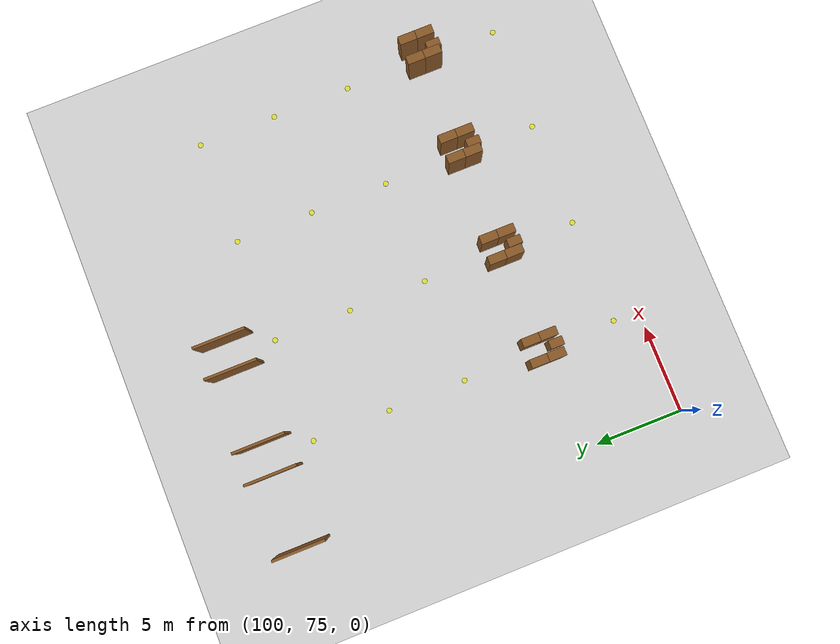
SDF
<sdf version="1.9">
 <world name="realistic_warehouse_150x200m">
  <model name="ground_plane">
   <static>true</static>
   <pose>68.5 102.0 0 0 0 0</pose>
   <link name="ground_link">
    <visual name="ground_visual">
     <geometry><box><size>127.0 194.0 0.01</size></box></geometry>
     <material><ambient>0.85 0.85 0.85 1.0</ambient><diffuse>0.85 0.85 0.85 1.0</diffuse></material>
    </visual>
    <collision name="ground_visual_collision">
     <geometry><box><size>127.0 194.0 0.01</size></box></geometry>
    </collision>
    <collision name="ground_collision">
     <geometry><plane><normal>0 0 1</normal><size>127.0 194.0</size></plane></geometry>
    </collision>
   </link>
  </model>
  <model name="aisle_R_Zone_I_A0_exit_1465">
   <static>true</static>
   <pose>100.9 97.0 1.4 0 0 0</pose>
   <link name="aisle_R_Zone_I_A0_exit_1465_link">
    <visual name="aisle_R_Zone_I_A0_exit_1465_vis">
     <geometry><box><size>0.15 3.0 2.8</size></box></geometry>
     <material><ambient>0.55 0.35 0.15 1.0</ambient><diffuse>0.55 0.35 0.15 1.0</diffuse></material>
    </visual>
    <collision name="aisle_R_Zone_I_A0_exit_1465_vis_collision">
     <geometry><box><size>0.15 3.0 2.8</size></box></geometry>
    </collision>
   </link>
  </model>
  <model name="cross_Zone_I_A1_S3_1475">
   <static>true</static>
   <pose>106.0 76.5 0.01 0 0 0</pose>
   <link name="cross_Zone_I_A1_S3_1475_link">
    <visual name="cross_Zone_I_A1_S3_1475_vis">
     <geometry><cylinder><radius>0.15</radius><length>0.02</length></cylinder></geometry>
     <material><ambient>0.9 0.9 0.2 1.0</ambient><diffuse>0.9 0.9 0.2 1.0</diffuse></material>
    </visual>
    <collision name="cross_Zone_I_A1_S3_1475_vis_collision">
     <geometry><cylinder><radius>0.15</radius><length>0.02</length></cylinder></geometry>
    </collision>
   </link>
  </model>
  <model name="rack_Zone_I_A1_S4_1476">
   <static>true</static>
   <pose>105.4 80.5 1.4 0 0 0</pose>
   <link name="rack_Zone_I_A1_S4_1476_link">
    <visual name="rack_Zone_I_A1_S4_1476_vis">
     <geometry><box><size>0.5 1.0 2.8</size></box></geometry>
     <material><ambient>0.55 0.35 0.15 1.0</ambient><diffuse>0.55 0.35 0.15 1.0</diffuse></material>
    </visual>
    <collision name="rack_Zone_I_A1_S4_1476_vis_collision">
     <geometry><box><size>0.5 1.0 2.8</size></box></geometry>
    </collision>
   </link>
  </model>
  <model name="rack_Zone_I_A1_S4_1477">
   <static>true</static>
   <pose>105.4 81.5 1.4 0 0 0</pose>
   <link name="rack_Zone_I_A1_S4_1477_link">
    <visual name="rack_Zone_I_A1_S4_1477_vis">
     <geometry><box><size>0.5 1.0 2.8</size></box></geometry>
     <material><ambient>0.55 0.35 0.15 1.0</ambient><diffuse>0.55 0.35 0.15 1.0</diffuse></material>
    </visual>
    <collision name="rack_Zone_I_A1_S4_1477_vis_collision">
     <geometry><box><size>0.5 1.0 2.8</size></box></geometry>
    </collision>
   </link>
  </model>
  <model name="rack_Zone_I_A1_S4_1478">
   <static>true</static>
   <pose>106.6 80.5 1.4 0 0 0</pose>
   <link name="rack_Zone_I_A1_S4_1478_link">
    <visual name="rack_Zone_I_A1_S4_1478_vis">
     <geometry><box><size>0.5 1.0 2.8</size></box></geometry>
     <material><ambient>0.55 0.35 0.15 1.0</ambient><diffuse>0.55 0.35 0.15 1.0</diffuse></material>
    </visual>
    <collision name="rack_Zone_I_A1_S4_1478_vis_collision">
     <geometry><box><size>0.5 1.0 2.8</size></box></geometry>
    </collision>
   </link>
  </model>
  <model name="rack_Zone_I_A1_S4_1479">
   <static>true</static>
   <pose>106.6 81.5 1.4 0 0 0</pose>
   <link name="rack_Zone_I_A1_S4_1479_link">
    <visual name="rack_Zone_I_A1_S4_1479_vis">
     <geometry><box><size>0.5 1.0 2.8</size></box></geometry>
     <material><ambient>0.55 0.35 0.15 1.0</ambient><diffuse>0.55 0.35 0.15 1.0</diffuse></material>
    </visual>
    <collision name="rack_Zone_I_A1_S4_1479_vis_collision">
     <geometry><box><size>0.5 1.0 2.8</size></box></geometry>
    </collision>
   </link>
  </model>
  <model name="rack_Zone_I_A1_S4_1480">
   <static>true</static>
   <pose>106.0 80.2 1.0499999999999998 0 0 0</pose>
   <link name="rack_Zone_I_A1_S4_1480_link">
    <visual name="rack_Zone_I_A1_S4_1480_vis">
     <geometry><box><size>0.5 0.8 2.0999999999999996</size></box></geometry>
     <material><ambient>0.55 0.35 0.15 1.0</ambient><diffuse>0.55 0.35 0.15 1.0</diffuse></material>
    </visual>
    <collision name="rack_Zone_I_A1_S4_1480_vis_collision">
     <geometry><box><size>0.5 0.8 2.0999999999999996</size></box></geometry>
    </collision>
   </link>
  </model>
  <model name="cross_Zone_I_A1_S5_1481">
   <static>true</static>
   <pose>106.0 85.5 0.01 0 0 0</pose>
   <link name="cross_Zone_I_A1_S5_1481_link">
    <visual name="cross_Zone_I_A1_S5_1481_vis">
     <geometry><cylinder><radius>0.15</radius><length>0.02</length></cylinder></geometry>
     <material><ambient>0.9 0.9 0.2 1.0</ambient><diffuse>0.9 0.9 0.2 1.0</diffuse></material>
    </visual>
    <collision name="cross_Zone_I_A1_S5_1481_vis_collision">
     <geometry><cylinder><radius>0.15</radius><length>0.02</length></cylinder></geometry>
    </collision>
   </link>
  </model>
  <model name="gap_Zone_I_A1_S6_1482">
   <static>true</static>
   <pose>106.0 90.0 0.01 0 0 0</pose>
   <link name="gap_Zone_I_A1_S6_1482_link">
    <visual name="gap_Zone_I_A1_S6_1482_vis">
     <geometry><cylinder><radius>0.15</radius><length>0.02</length></cylinder></geometry>
     <material><ambient>0.9 0.9 0.2 1.0</ambient><diffuse>0.9 0.9 0.2 1.0</diffuse></material>
    </visual>
    <collision name="gap_Zone_I_A1_S6_1482_vis_collision">
     <geometry><cylinder><radius>0.15</radius><length>0.02</length></cylinder></geometry>
    </collision>
   </link>
  </model>
  <model name="cross_Zone_I_A1_S7_1483">
   <static>true</static>
   <pose>106.0 94.5 0.01 0 0 0</pose>
   <link name="cross_Zone_I_A1_S7_1483_link">
    <visual name="cross_Zone_I_A1_S7_1483_vis">
     <geometry><cylinder><radius>0.15</radius><length>0.02</length></cylinder></geometry>
     <material><ambient>0.9 0.9 0.2 1.0</ambient><diffuse>0.9 0.9 0.2 1.0</diffuse></material>
    </visual>
    <collision name="cross_Zone_I_A1_S7_1483_vis_collision">
     <geometry><cylinder><radius>0.15</radius><length>0.02</length></cylinder></geometry>
    </collision>
   </link>
  </model>
  <model name="aisle_L_Zone_I_A1_exit_1484">
   <static>true</static>
   <pose>105.1 97.0 1.4 0 0 0</pose>
   <link name="aisle_L_Zone_I_A1_exit_1484_link">
    <visual name="aisle_L_Zone_I_A1_exit_1484_vis">
     <geometry><box><size>0.15 3.0 2.8</size></box></geometry>
     <material><ambient>0.55 0.35 0.15 1.0</ambient><diffuse>0.55 0.35 0.15 1.0</diffuse></material>
    </visual>
    <collision name="aisle_L_Zone_I_A1_exit_1484_vis_collision">
     <geometry><box><size>0.15 3.0 2.8</size></box></geometry>
    </collision>
   </link>
  </model>
  <model name="aisle_R_Zone_I_A1_exit_1485">
   <static>true</static>
   <pose>106.9 97.0 1.4 0 0 0</pose>
   <link name="aisle_R_Zone_I_A1_exit_1485_link">
    <visual name="aisle_R_Zone_I_A1_exit_1485_vis">
     <geometry><box><size>0.15 3.0 2.8</size></box></geometry>
     <material><ambient>0.55 0.35 0.15 1.0</ambient><diffuse>0.55 0.35 0.15 1.0</diffuse></material>
    </visual>
    <collision name="aisle_R_Zone_I_A1_exit_1485_vis_collision">
     <geometry><box><size>0.15 3.0 2.8</size></box></geometry>
    </collision>
   </link>
  </model>
  <model name="cross_Zone_I_A2_S3_1495">
   <static>true</static>
   <pose>112.0 76.5 0.01 0 0 0</pose>
   <link name="cross_Zone_I_A2_S3_1495_link">
    <visual name="cross_Zone_I_A2_S3_1495_vis">
     <geometry><cylinder><radius>0.15</radius><length>0.02</length></cylinder></geometry>
     <material><ambient>0.9 0.9 0.2 1.0</ambient><diffuse>0.9 0.9 0.2 1.0</diffuse></material>
    </visual>
    <collision name="cross_Zone_I_A2_S3_1495_vis_collision">
     <geometry><cylinder><radius>0.15</radius><length>0.02</length></cylinder></geometry>
    </collision>
   </link>
  </model>
  <model name="rack_Zone_I_A2_S4_1496">
   <static>true</static>
   <pose>111.4 80.5 1.4 0 0 0</pose>
   <link name="rack_Zone_I_A2_S4_1496_link">
    <visual name="rack_Zone_I_A2_S4_1496_vis">
     <geometry><box><size>0.5 1.0 2.8</size></box></geometry>
     <material><ambient>0.55 0.35 0.15 1.0</ambient><diffuse>0.55 0.35 0.15 1.0</diffuse></material>
    </visual>
    <collision name="rack_Zone_I_A2_S4_1496_vis_collision">
     <geometry><box><size>0.5 1.0 2.8</size></box></geometry>
    </collision>
   </link>
  </model>
  <model name="rack_Zone_I_A2_S4_1497">
   <static>true</static>
   <pose>111.4 81.5 1.4 0 0 0</pose>
   <link name="rack_Zone_I_A2_S4_1497_link">
    <visual name="rack_Zone_I_A2_S4_1497_vis">
     <geometry><box><size>0.5 1.0 2.8</size></box></geometry>
     <material><ambient>0.55 0.35 0.15 1.0</ambient><diffuse>0.55 0.35 0.15 1.0</diffuse></material>
    </visual>
    <collision name="rack_Zone_I_A2_S4_1497_vis_collision">
     <geometry><box><size>0.5 1.0 2.8</size></box></geometry>
    </collision>
   </link>
  </model>
  <model name="rack_Zone_I_A2_S4_1498">
   <static>true</static>
   <pose>112.6 80.5 1.4 0 0 0</pose>
   <link name="rack_Zone_I_A2_S4_1498_link">
    <visual name="rack_Zone_I_A2_S4_1498_vis">
     <geometry><box><size>0.5 1.0 2.8</size></box></geometry>
     <material><ambient>0.55 0.35 0.15 1.0</ambient><diffuse>0.55 0.35 0.15 1.0</diffuse></material>
    </visual>
    <collision name="rack_Zone_I_A2_S4_1498_vis_collision">
     <geometry><box><size>0.5 1.0 2.8</size></box></geometry>
    </collision>
   </link>
  </model>
  <model name="rack_Zone_I_A2_S4_1499">
   <static>true</static>
   <pose>112.6 81.5 1.4 0 0 0</pose>
   <link name="rack_Zone_I_A2_S4_1499_link">
    <visual name="rack_Zone_I_A2_S4_1499_vis">
     <geometry><box><size>0.5 1.0 2.8</size></box></geometry>
     <material><ambient>0.55 0.35 0.15 1.0</ambient><diffuse>0.55 0.35 0.15 1.0</diffuse></material>
    </visual>
    <collision name="rack_Zone_I_A2_S4_1499_vis_collision">
     <geometry><box><size>0.5 1.0 2.8</size></box></geometry>
    </collision>
   </link>
  </model>
  <model name="rack_Zone_I_A2_S4_1500">
   <static>true</static>
   <pose>112.0 80.2 1.0499999999999998 0 0 0</pose>
   <link name="rack_Zone_I_A2_S4_1500_link">
    <visual name="rack_Zone_I_A2_S4_1500_vis">
     <geometry><box><size>0.5 0.8 2.0999999999999996</size></box></geometry>
     <material><ambient>0.55 0.35 0.15 1.0</ambient><diffuse>0.55 0.35 0.15 1.0</diffuse></material>
    </visual>
    <collision name="rack_Zone_I_A2_S4_1500_vis_collision">
     <geometry><box><size>0.5 0.8 2.0999999999999996</size></box></geometry>
    </collision>
   </link>
  </model>
  <model name="cross_Zone_I_A2_S5_1501">
   <static>true</static>
   <pose>112.0 85.5 0.01 0 0 0</pose>
   <link name="cross_Zone_I_A2_S5_1501_link">
    <visual name="cross_Zone_I_A2_S5_1501_vis">
     <geometry><cylinder><radius>0.15</radius><length>0.02</length></cylinder></geometry>
     <material><ambient>0.9 0.9 0.2 1.0</ambient><diffuse>0.9 0.9 0.2 1.0</diffuse></material>
    </visual>
    <collision name="cross_Zone_I_A2_S5_1501_vis_collision">
     <geometry><cylinder><radius>0.15</radius><length>0.02</length></cylinder></geometry>
    </collision>
   </link>
  </model>
  <model name="gap_Zone_I_A2_S6_1502">
   <static>true</static>
   <pose>112.0 90.0 0.01 0 0 0</pose>
   <link name="gap_Zone_I_A2_S6_1502_link">
    <visual name="gap_Zone_I_A2_S6_1502_vis">
     <geometry><cylinder><radius>0.15</radius><length>0.02</length></cylinder></geometry>
     <material><ambient>0.9 0.9 0.2 1.0</ambient><diffuse>0.9 0.9 0.2 1.0</diffuse></material>
    </visual>
    <collision name="gap_Zone_I_A2_S6_1502_vis_collision">
     <geometry><cylinder><radius>0.15</radius><length>0.02</length></cylinder></geometry>
    </collision>
   </link>
  </model>
  <model name="cross_Zone_I_A2_S7_1503">
   <static>true</static>
   <pose>112.0 94.5 0.01 0 0 0</pose>
   <link name="cross_Zone_I_A2_S7_1503_link">
    <visual name="cross_Zone_I_A2_S7_1503_vis">
     <geometry><cylinder><radius>0.15</radius><length>0.02</length></cylinder></geometry>
     <material><ambient>0.9 0.9 0.2 1.0</ambient><diffuse>0.9 0.9 0.2 1.0</diffuse></material>
    </visual>
    <collision name="cross_Zone_I_A2_S7_1503_vis_collision">
     <geometry><cylinder><radius>0.15</radius><length>0.02</length></cylinder></geometry>
    </collision>
   </link>
  </model>
  <model name="aisle_L_Zone_I_A2_exit_1504">
   <static>true</static>
   <pose>111.1 97.0 1.4 0 0 0</pose>
   <link name="aisle_L_Zone_I_A2_exit_1504_link">
    <visual name="aisle_L_Zone_I_A2_exit_1504_vis">
     <geometry><box><size>0.15 3.0 2.8</size></box></geometry>
     <material><ambient>0.55 0.35 0.15 1.0</ambient><diffuse>0.55 0.35 0.15 1.0</diffuse></material>
    </visual>
    <collision name="aisle_L_Zone_I_A2_exit_1504_vis_collision">
     <geometry><box><size>0.15 3.0 2.8</size></box></geometry>
    </collision>
   </link>
  </model>
  <model name="aisle_R_Zone_I_A2_exit_1505">
   <static>true</static>
   <pose>112.9 97.0 1.4 0 0 0</pose>
   <link name="aisle_R_Zone_I_A2_exit_1505_link">
    <visual name="aisle_R_Zone_I_A2_exit_1505_vis">
     <geometry><box><size>0.15 3.0 2.8</size></box></geometry>
     <material><ambient>0.55 0.35 0.15 1.0</ambient><diffuse>0.55 0.35 0.15 1.0</diffuse></material>
    </visual>
    <collision name="aisle_R_Zone_I_A2_exit_1505_vis_collision">
     <geometry><box><size>0.15 3.0 2.8</size></box></geometry>
    </collision>
   </link>
  </model>
  <model name="cross_Zone_I_A3_S3_1515">
   <static>true</static>
   <pose>118.0 76.5 0.01 0 0 0</pose>
   <link name="cross_Zone_I_A3_S3_1515_link">
    <visual name="cross_Zone_I_A3_S3_1515_vis">
     <geometry><cylinder><radius>0.15</radius><length>0.02</length></cylinder></geometry>
     <material><ambient>0.9 0.9 0.2 1.0</ambient><diffuse>0.9 0.9 0.2 1.0</diffuse></material>
    </visual>
    <collision name="cross_Zone_I_A3_S3_1515_vis_collision">
     <geometry><cylinder><radius>0.15</radius><length>0.02</length></cylinder></geometry>
    </collision>
   </link>
  </model>
  <model name="rack_Zone_I_A3_S4_1516">
   <static>true</static>
   <pose>117.4 80.5 1.4 0 0 0</pose>
   <link name="rack_Zone_I_A3_S4_1516_link">
    <visual name="rack_Zone_I_A3_S4_1516_vis">
     <geometry><box><size>0.5 1.0 2.8</size></box></geometry>
     <material><ambient>0.55 0.35 0.15 1.0</ambient><diffuse>0.55 0.35 0.15 1.0</diffuse></material>
    </visual>
    <collision name="rack_Zone_I_A3_S4_1516_vis_collision">
     <geometry><box><size>0.5 1.0 2.8</size></box></geometry>
    </collision>
   </link>
  </model>
  <model name="rack_Zone_I_A3_S4_1517">
   <static>true</static>
   <pose>117.4 81.5 1.4 0 0 0</pose>
   <link name="rack_Zone_I_A3_S4_1517_link">
    <visual name="rack_Zone_I_A3_S4_1517_vis">
     <geometry><box><size>0.5 1.0 2.8</size></box></geometry>
     <material><ambient>0.55 0.35 0.15 1.0</ambient><diffuse>0.55 0.35 0.15 1.0</diffuse></material>
    </visual>
    <collision name="rack_Zone_I_A3_S4_1517_vis_collision">
     <geometry><box><size>0.5 1.0 2.8</size></box></geometry>
    </collision>
   </link>
  </model>
  <model name="rack_Zone_I_A3_S4_1518">
   <static>true</static>
   <pose>118.6 80.5 1.4 0 0 0</pose>
   <link name="rack_Zone_I_A3_S4_1518_link">
    <visual name="rack_Zone_I_A3_S4_1518_vis">
     <geometry><box><size>0.5 1.0 2.8</size></box></geometry>
     <material><ambient>0.55 0.35 0.15 1.0</ambient><diffuse>0.55 0.35 0.15 1.0</diffuse></material>
    </visual>
    <collision name="rack_Zone_I_A3_S4_1518_vis_collision">
     <geometry><box><size>0.5 1.0 2.8</size></box></geometry>
    </collision>
   </link>
  </model>
  <model name="rack_Zone_I_A3_S4_1519">
   <static>true</static>
   <pose>118.6 81.5 1.4 0 0 0</pose>
   <link name="rack_Zone_I_A3_S4_1519_link">
    <visual name="rack_Zone_I_A3_S4_1519_vis">
     <geometry><box><size>0.5 1.0 2.8</size></box></geometry>
     <material><ambient>0.55 0.35 0.15 1.0</ambient><diffuse>0.55 0.35 0.15 1.0</diffuse></material>
    </visual>
    <collision name="rack_Zone_I_A3_S4_1519_vis_collision">
     <geometry><box><size>0.5 1.0 2.8</size></box></geometry>
    </collision>
   </link>
  </model>
  <model name="rack_Zone_I_A3_S4_1520">
   <static>true</static>
   <pose>118.0 80.2 1.0499999999999998 0 0 0</pose>
   <link name="rack_Zone_I_A3_S4_1520_link">
    <visual name="rack_Zone_I_A3_S4_1520_vis">
     <geometry><box><size>0.5 0.8 2.0999999999999996</size></box></geometry>
     <material><ambient>0.55 0.35 0.15 1.0</ambient><diffuse>0.55 0.35 0.15 1.0</diffuse></material>
    </visual>
    <collision name="rack_Zone_I_A3_S4_1520_vis_collision">
     <geometry><box><size>0.5 0.8 2.0999999999999996</size></box></geometry>
    </collision>
   </link>
  </model>
  <model name="cross_Zone_I_A3_S5_1521">
   <static>true</static>
   <pose>118.0 85.5 0.01 0 0 0</pose>
   <link name="cross_Zone_I_A3_S5_1521_link">
    <visual name="cross_Zone_I_A3_S5_1521_vis">
     <geometry><cylinder><radius>0.15</radius><length>0.02</length></cylinder></geometry>
     <material><ambient>0.9 0.9 0.2 1.0</ambient><diffuse>0.9 0.9 0.2 1.0</diffuse></material>
    </visual>
    <collision name="cross_Zone_I_A3_S5_1521_vis_collision">
     <geometry><cylinder><radius>0.15</radius><length>0.02</length></cylinder></geometry>
    </collision>
   </link>
  </model>
  <model name="gap_Zone_I_A3_S6_1522">
   <static>true</static>
   <pose>118.0 90.0 0.01 0 0 0</pose>
   <link name="gap_Zone_I_A3_S6_1522_link">
    <visual name="gap_Zone_I_A3_S6_1522_vis">
     <geometry><cylinder><radius>0.15</radius><length>0.02</length></cylinder></geometry>
     <material><ambient>0.9 0.9 0.2 1.0</ambient><diffuse>0.9 0.9 0.2 1.0</diffuse></material>
    </visual>
    <collision name="gap_Zone_I_A3_S6_1522_vis_collision">
     <geometry><cylinder><radius>0.15</radius><length>0.02</length></cylinder></geometry>
    </collision>
   </link>
  </model>
  <model name="cross_Zone_I_A3_S7_1523">
   <static>true</static>
   <pose>118.0 94.5 0.01 0 0 0</pose>
   <link name="cross_Zone_I_A3_S7_1523_link">
    <visual name="cross_Zone_I_A3_S7_1523_vis">
     <geometry><cylinder><radius>0.15</radius><length>0.02</length></cylinder></geometry>
     <material><ambient>0.9 0.9 0.2 1.0</ambient><diffuse>0.9 0.9 0.2 1.0</diffuse></material>
    </visual>
    <collision name="cross_Zone_I_A3_S7_1523_vis_collision">
     <geometry><cylinder><radius>0.15</radius><length>0.02</length></cylinder></geometry>
    </collision>
   </link>
  </model>
  <model name="cross_Zone_I_A4_S3_1535">
   <static>true</static>
   <pose>124.0 76.5 0.01 0 0 0</pose>
   <link name="cross_Zone_I_A4_S3_1535_link">
    <visual name="cross_Zone_I_A4_S3_1535_vis">
     <geometry><cylinder><radius>0.15</radius><length>0.02</length></cylinder></geometry>
     <material><ambient>0.9 0.9 0.2 1.0</ambient><diffuse>0.9 0.9 0.2 1.0</diffuse></material>
    </visual>
    <collision name="cross_Zone_I_A4_S3_1535_vis_collision">
     <geometry><cylinder><radius>0.15</radius><length>0.02</length></cylinder></geometry>
    </collision>
   </link>
  </model>
  <model name="rack_Zone_I_A4_S4_1536">
   <static>true</static>
   <pose>123.4 80.5 1.4 0 0 0</pose>
   <link name="rack_Zone_I_A4_S4_1536_link">
    <visual name="rack_Zone_I_A4_S4_1536_vis">
     <geometry><box><size>0.5 1.0 2.8</size></box></geometry>
     <material><ambient>0.55 0.35 0.15 1.0</ambient><diffuse>0.55 0.35 0.15 1.0</diffuse></material>
    </visual>
    <collision name="rack_Zone_I_A4_S4_1536_vis_collision">
     <geometry><box><size>0.5 1.0 2.8</size></box></geometry>
    </collision>
   </link>
  </model>
  <model name="rack_Zone_I_A4_S4_1537">
   <static>true</static>
   <pose>123.4 81.5 1.4 0 0 0</pose>
   <link name="rack_Zone_I_A4_S4_1537_link">
    <visual name="rack_Zone_I_A4_S4_1537_vis">
     <geometry><box><size>0.5 1.0 2.8</size></box></geometry>
     <material><ambient>0.55 0.35 0.15 1.0</ambient><diffuse>0.55 0.35 0.15 1.0</diffuse></material>
    </visual>
    <collision name="rack_Zone_I_A4_S4_1537_vis_collision">
     <geometry><box><size>0.5 1.0 2.8</size></box></geometry>
    </collision>
   </link>
  </model>
  <model name="rack_Zone_I_A4_S4_1538">
   <static>true</static>
   <pose>124.6 80.5 1.4 0 0 0</pose>
   <link name="rack_Zone_I_A4_S4_1538_link">
    <visual name="rack_Zone_I_A4_S4_1538_vis">
     <geometry><box><size>0.5 1.0 2.8</size></box></geometry>
     <material><ambient>0.55 0.35 0.15 1.0</ambient><diffuse>0.55 0.35 0.15 1.0</diffuse></material>
    </visual>
    <collision name="rack_Zone_I_A4_S4_1538_vis_collision">
     <geometry><box><size>0.5 1.0 2.8</size></box></geometry>
    </collision>
   </link>
  </model>
  <model name="rack_Zone_I_A4_S4_1539">
   <static>true</static>
   <pose>124.6 81.5 1.4 0 0 0</pose>
   <link name="rack_Zone_I_A4_S4_1539_link">
    <visual name="rack_Zone_I_A4_S4_1539_vis">
     <geometry><box><size>0.5 1.0 2.8</size></box></geometry>
     <material><ambient>0.55 0.35 0.15 1.0</ambient><diffuse>0.55 0.35 0.15 1.0</diffuse></material>
    </visual>
    <collision name="rack_Zone_I_A4_S4_1539_vis_collision">
     <geometry><box><size>0.5 1.0 2.8</size></box></geometry>
    </collision>
   </link>
  </model>
  <model name="rack_Zone_I_A4_S4_1540">
   <static>true</static>
   <pose>124.0 80.2 1.0499999999999998 0 0 0</pose>
   <link name="rack_Zone_I_A4_S4_1540_link">
    <visual name="rack_Zone_I_A4_S4_1540_vis">
     <geometry><box><size>0.5 0.8 2.0999999999999996</size></box></geometry>
     <material><ambient>0.55 0.35 0.15 1.0</ambient><diffuse>0.55 0.35 0.15 1.0</diffuse></material>
    </visual>
    <collision name="rack_Zone_I_A4_S4_1540_vis_collision">
     <geometry><box><size>0.5 0.8 2.0999999999999996</size></box></geometry>
    </collision>
   </link>
  </model>
  <model name="cross_Zone_I_A4_S5_1541">
   <static>true</static>
   <pose>124.0 85.5 0.01 0 0 0</pose>
   <link name="cross_Zone_I_A4_S5_1541_link">
    <visual name="cross_Zone_I_A4_S5_1541_vis">
     <geometry><cylinder><radius>0.15</radius><length>0.02</length></cylinder></geometry>
     <material><ambient>0.9 0.9 0.2 1.0</ambient><diffuse>0.9 0.9 0.2 1.0</diffuse></material>
    </visual>
    <collision name="cross_Zone_I_A4_S5_1541_vis_collision">
     <geometry><cylinder><radius>0.15</radius><length>0.02</length></cylinder></geometry>
    </collision>
   </link>
  </model>
  <model name="gap_Zone_I_A4_S6_1542">
   <static>true</static>
   <pose>124.0 90.0 0.01 0 0 0</pose>
   <link name="gap_Zone_I_A4_S6_1542_link">
    <visual name="gap_Zone_I_A4_S6_1542_vis">
     <geometry><cylinder><radius>0.15</radius><length>0.02</length></cylinder></geometry>
     <material><ambient>0.9 0.9 0.2 1.0</ambient><diffuse>0.9 0.9 0.2 1.0</diffuse></material>
    </visual>
    <collision name="gap_Zone_I_A4_S6_1542_vis_collision">
     <geometry><cylinder><radius>0.15</radius><length>0.02</length></cylinder></geometry>
    </collision>
   </link>
  </model>
  <model name="cross_Zone_I_A4_S7_1543">
   <static>true</static>
   <pose>124.0 94.5 0.01 0 0 0</pose>
   <link name="cross_Zone_I_A4_S7_1543_link">
    <visual name="cross_Zone_I_A4_S7_1543_vis">
     <geometry><cylinder><radius>0.15</radius><length>0.02</length></cylinder></geometry>
     <material><ambient>0.9 0.9 0.2 1.0</ambient><diffuse>0.9 0.9 0.2 1.0</diffuse></material>
    </visual>
    <collision name="cross_Zone_I_A4_S7_1543_vis_collision">
     <geometry><cylinder><radius>0.15</radius><length>0.02</length></cylinder></geometry>
    </collision>
   </link>
  </model>
 </world>
</sdf>
